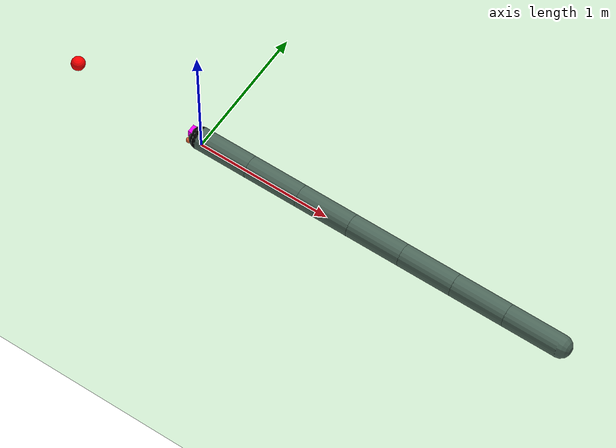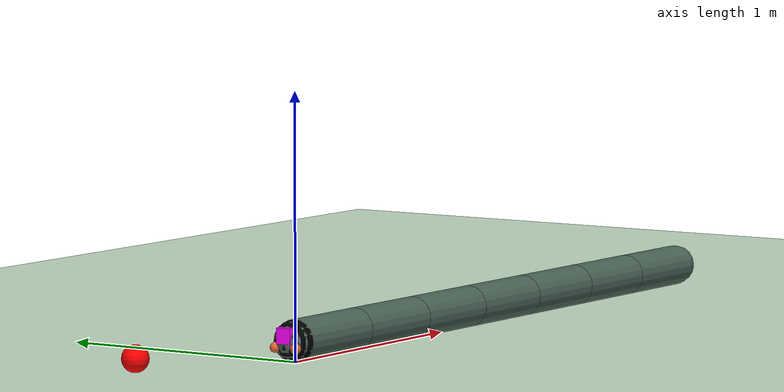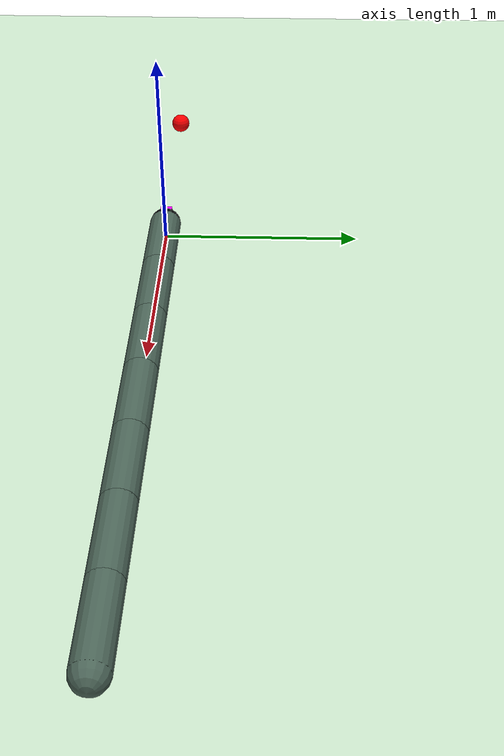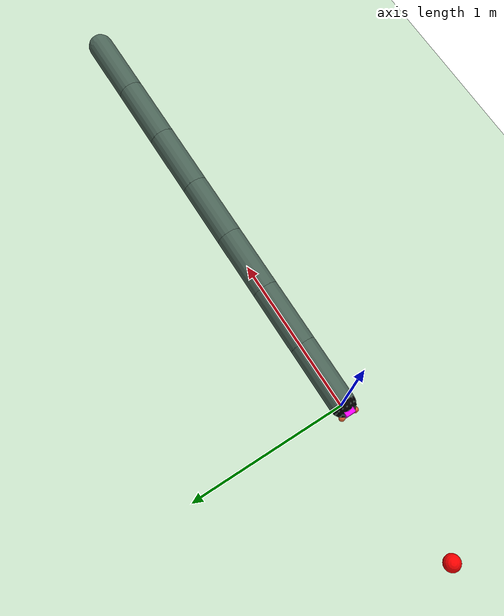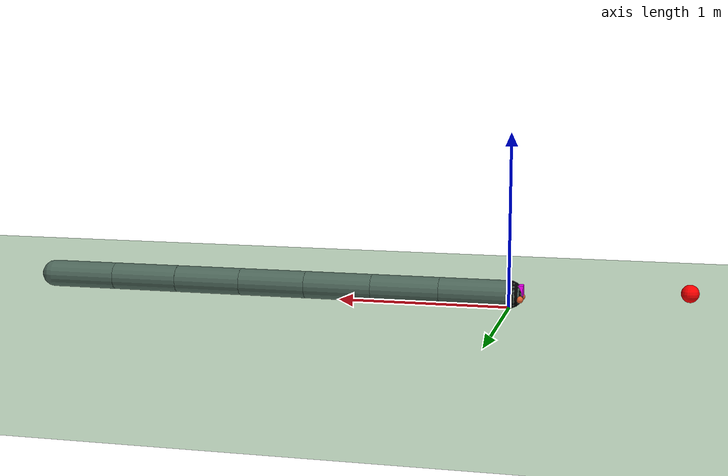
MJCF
<mujoco model="6Modules-Snake">
    <compiler angle="degree" coordinate="local" inertiafromgeom="true"/>
    <option integrator="Euler" timestep="0.0125">
        <flag energy="enable" clampctrl="enable"/>
    </option>
    <size nconmax="1000"/>

    <!--  ================= old 6Modules-Snake.xml ================= /-->

    <!--  ================= defaults ================= /-->
    <default>
        <!-- for power effizient experiment-->
        <!-- armature='1' damping="1" -->

        <default class="snakeBody_class">
            <geom conaffinity="1" condim="3" friction="1 0.95 0.00001" material="MatBody"/>
            <joint armature='0.001' damping="0" frictionloss="0.001" />
        </default>

        <!-- TODO 对于 test_M1_simple_7Modules 模型，以下参数能使蛇稳定向前移动  -->
        <position ctrllimited="true" ctrlrange="-1.5 1.5" forcelimited="true" forcerange="-50.0 50.0" kp="15" gear="1"/>
    </default>

    <asset>
        <material name="MatBody" specular="3" shininess=".5" reflectance="1" rgba=".3 .4 .35 1"/>

        <!-- My Textures -->
        <!--  ================= Target Mesh ================= /-->
        <texture builtin="gradient" height="100" rgb1="1 1 1" rgb2="0 0 0" type="skybox" width="100"/>
        <texture builtin="flat" height="1278" mark="cross" markrgb="1 1 1" name="texgeom" random="0.01"
                 rgb1="0.8 0.6 0.4" rgb2="0.8 0.6 0.4" type="cube" width="127"/>
        <texture builtin="checker" height="100" name="texplane" rgb1="0 0 0" rgb2="0.8 0.8 0.8" type="2d" width="100"/>
        <material name="MatPlane" reflectance="0.5" shininess="1" specular="1" texrepeat="80 80" texture="texplane"/>
        <!-- 80 80 is one le -->
        <material name="geom" texture="texgeom" texuniform="true"/>

        <material name="MatTarget" rgba="1 0 0 1" reflectance="0.05" shininess="0.1" specular="0.1"/>
    </asset>

    <!-- Add manually-->
    <visual>
        <map znear="0.0625"  />
        <quality shadowsize="4096"/>

    </visual>

    <worldbody>
        <light cutoff="100" diffuse="1 1 1" dir="-0 0 -1.3" directional="true" exponent="1" pos="0 0 1.3"
               specular=".1 .1 .1"/>
        <geom name="floor" size="80 80 10" material="MatPlane" conaffinity="1" condim="3" pos="0 0 -0.025" rgba="0.8 0.9 0.8 0.71" type="plane"/>

        <!--  ================= Sun ================= /-->

        <!--  ================= Target ================= /-->
        <body name="target_ball" pos="-1 0.0 0.05">
            <joint axis="1 0 0" name="target_slider_x" type="slide"/>
            <joint axis="0 1 0" name="target_slider_y" type="slide"/>
            <geom name="target_ball_geom" type="sphere" pos="0 0 0.08" size="0.05" rgba="1 0 0 1"/>
        </body>

        <!--  ================= Add manually ================= /-->
        <body name="Snake-bodys" pos="0 0 .04" childclass="snakeBody_class">
            <!-- Simulate the firctional sliding on the floor -->
            <geom name="front_head" pos="-0.05 0.015 .025" type="box" size=".01 .01 .01" rgba="1 0 0 0.6"/>
            <camera name="cam_head" pos="-0.05 0.0 .065" fovy="90" euler="90 -90 0"/>
            <site name="site_head" pos="-0.05 0.0 .065" type="box"  size=".03 .03 .03" rgba="1 0 1 0.9"/>

            <site name="eyeL" type="sphere" size="0.02" pos="-.065 -.045 .02" rgba=".9 .4 .2 1"/>
            <site name="eyer" type="sphere" size="0.02" pos="-.065 0.045 .02" rgba=".9 .4 .2 1"/>
            <site name="head" material="MatBody" type="sphere" size="0.08" pos="0 0 0.04" rgba="0 0 0 1"/>

            <geom type="capsule" pos="0.2 0 .04" quat="0.707 0 -0.707 0" size="0.08 0.2" />

            <!-- TODO 将hinge_z放置到蛇的第一段的1/2处，使其以第一段中部为z轴转动位  -->
            <joint pos=".3 0 0" axis="1 0 0" name="slider_x" type="slide"/>
            <joint pos=".3 0 0" axis="0 1 0" name="slider_y" type="slide"/>
            <joint pos=".3 0 0" axis="0 0 1" name="slider_z" type="slide"/>
            <joint pos=".3 0 0" axis="0 1 0" name="hinge_y" type="hinge"/>
            <joint pos=".3 0 0" axis="0 0 1" name="hinge_z"  type="hinge"/>

            <body name="Module_1" pos="0.4 0 .04">
            <inertial pos="0.1 0 .04" quat="0.707 0 -0.707 0" mass="0.34605" diaginertia="0.003 0.003 0.001" />
            <joint name="Joint_1" type="hinge" pos="0.0 0 .04" axis="0 0 1"/>
            <geom type="capsule" pos="0.2 0 0" quat="0.707 0 -0.707 0" size="0.08 0.2" />
                <body name="Module_2" pos="0.4 0 0">
                    <joint name="Joint_2" type="hinge" pos="0 0 0" axis="0 0 1"/>
                    <geom type="capsule" pos="0.2 0 0" quat="0.707 0 -0.707 0" size="0.08 0.2" />
                    <body name="Module_3" pos="0.4 0 0">
                        <joint name="Joint_3" type="hinge" pos="0 0 0" axis="0 0 1"/>
                        <geom type="capsule" pos="0.2 0 0" quat="0.707 0 -0.707 0" size="0.08 0.2" />
                        <body name="Module_4" pos="0.4 0 0">
                            <joint name="Joint_4" type="hinge" pos="0 0 0" axis="0 0 1"/>
                            <geom type="capsule" pos="0.2 0 0" quat="0.707 0 -0.707 0" size="0.08 0.2" />
                            <body name="Module_5" pos="0.4 0 0">
                                <joint name="Joint_5" type="hinge" pos="0 0 0" axis="0 0 1"/>
                                <geom type="capsule" pos="0.2 0 0" quat="0.707 0 -0.707 0" size="0.08 0.2" />
                                <body name="Module_6" pos="0.4 0 0">
                                    <joint name="Joint_6" type="hinge" pos="0 0 0" axis="0 0 1"/>
                                    <geom type="capsule" pos="0.2 0 0" quat="0.707 0 -0.707 0" size="0.08 0.2" />
                                </body>
                            </body>
                        </body>
                    </body>
                </body>
            </body>
        </body>
    </worldbody>

    <actuator >

        <position name="actuator_joint01" joint="Joint_1"/>
        <position name="actuator_joint02" joint="Joint_2"/>
        <position name="actuator_joint03" joint="Joint_3"/>
        <position name="actuator_joint04" joint="Joint_4"/>
        <position name="actuator_joint05" joint="Joint_5"/>
        <position name="actuator_joint06" joint="Joint_6"/>
    </actuator>
    <sensor>

        <actuatorfrc name="sensor_actuatorfrc_joint01" actuator="actuator_joint01" />
        <actuatorfrc name="sensor_actuatorfrc_joint02" actuator="actuator_joint02" />
        <actuatorfrc name="sensor_actuatorfrc_joint03" actuator="actuator_joint03" />
        <actuatorfrc name="sensor_actuatorfrc_joint04" actuator="actuator_joint04" />
        <actuatorfrc name="sensor_actuatorfrc_joint05" actuator="actuator_joint05" />
        <actuatorfrc name="sensor_actuatorfrc_joint06" actuator="actuator_joint06" />

        <velocimeter name="sensor_velocimeter" site="site_head"/>
        <accelerometer name="sensor_accelerometer" site="site_head"/>

    </sensor>
</mujoco>
